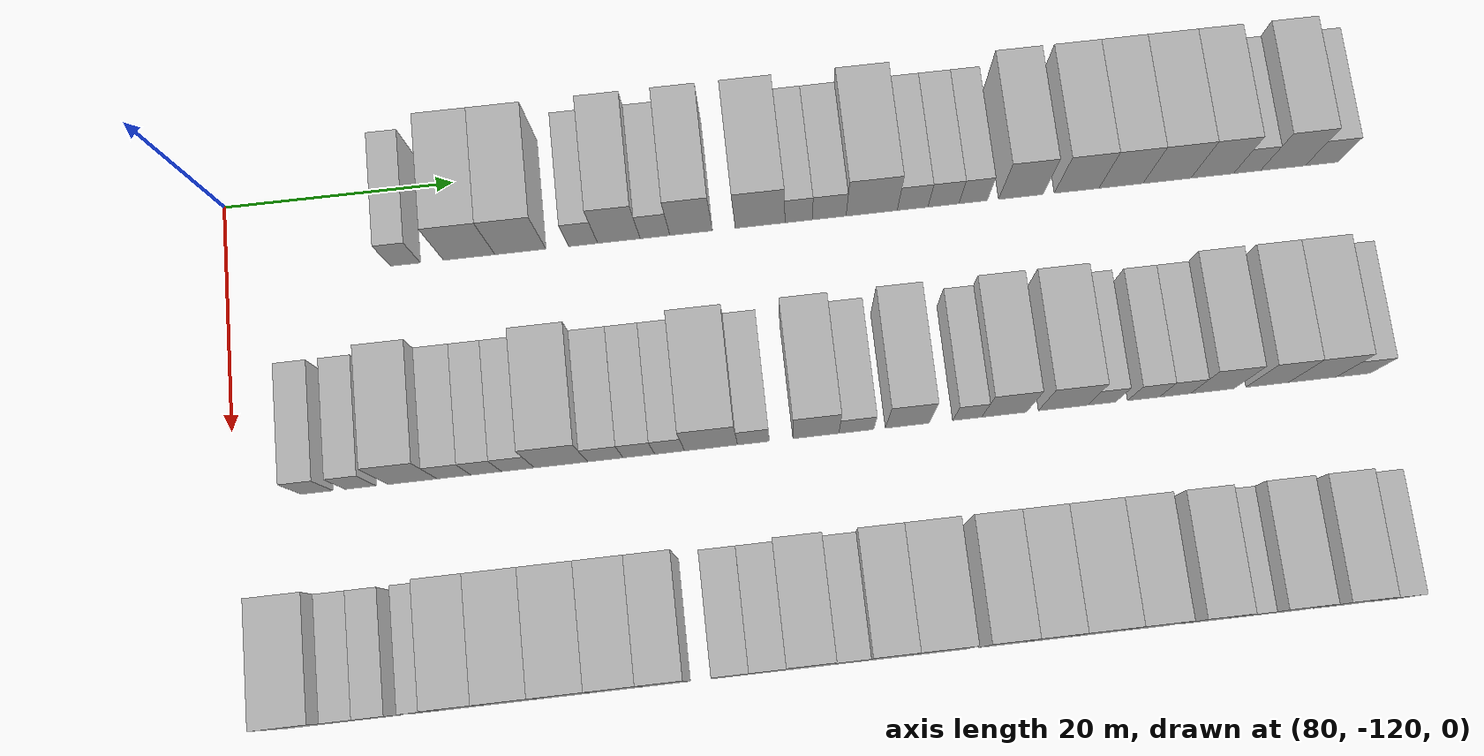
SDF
<sdf version="1.6">
 <world name="default">
  <model name="building_595">
   <static>1</static>
   <pose>82.0000 -104.5225 0 0.000000 0.000000 0.000000</pose>
   <link name="link">
    <pose>0 0 3.00 0 0 0</pose>
    <collision name="collision"><geometry><box><size>10.0000 2.5837 6.0000</size></box></geometry></collision>
    <visual name="visual">
     <cast_shadows>0</cast_shadows>
     <geometry><box><size>10.0000 2.5837 6.0000</size></box></geometry>
     <material>
      <script>
       <uri>model://HANNAS_wall/materials/scripts</uri>
       <uri>model://HANNAS_wall/materials/textures</uri>
       <name>vrc/HANNAS_wall</name>
      </script>
     </material>
    </visual>
   </link>
  </model>
  <model name="building_596">
   <static>1</static>
   <pose>82.0000 -98.9935 0 0.000000 0.000000 0.000000</pose>
   <link name="link">
    <pose>0 0 4.50 0 0 0</pose>
    <collision name="collision"><geometry><box><size>10.0000 4.4743 9.0000</size></box></geometry></collision>
    <visual name="visual">
     <cast_shadows>0</cast_shadows>
     <geometry><box><size>10.0000 4.4743 9.0000</size></box></geometry>
     <material>
      <script>
       <uri>model://HANNAS_wall/materials/scripts</uri>
       <uri>model://HANNAS_wall/materials/textures</uri>
       <name>vrc/HANNAS_wall</name>
      </script>
     </material>
    </visual>
   </link>
  </model>
  <model name="building_597">
   <static>1</static>
   <pose>82.0000 -94.5396 0 0.000000 0.000000 0.000000</pose>
   <link name="link">
    <pose>0 0 4.50 0 0 0</pose>
    <collision name="collision"><geometry><box><size>10.0000 4.4334 9.0000</size></box></geometry></collision>
    <visual name="visual">
     <cast_shadows>0</cast_shadows>
     <geometry><box><size>10.0000 4.4334 9.0000</size></box></geometry>
     <material>
      <script>
       <uri>model://HANNAS_wall/materials/scripts</uri>
       <uri>model://HANNAS_wall/materials/textures</uri>
       <name>vrc/HANNAS_wall</name>
      </script>
     </material>
    </visual>
   </link>
  </model>
  <model name="building_598">
   <static>1</static>
   <pose>82.0000 -89.0688 0 0.000000 0.000000 0.000000</pose>
   <link name="link">
    <pose>0 0 3.00 0 0 0</pose>
    <collision name="collision"><geometry><box><size>10.0000 2.5083 6.0000</size></box></geometry></collision>
    <visual name="visual">
     <cast_shadows>0</cast_shadows>
     <geometry><box><size>10.0000 2.5083 6.0000</size></box></geometry>
     <material>
      <script>
       <uri>model://HANNAS_wall/materials/scripts</uri>
       <uri>model://HANNAS_wall/materials/textures</uri>
       <name>vrc/HANNAS_wall</name>
      </script>
     </material>
    </visual>
   </link>
  </model>
  <model name="building_599">
   <static>1</static>
   <pose>82.0000 -85.9629 0 0.000000 0.000000 0.000000</pose>
   <link name="link">
    <pose>0 0 4.50 0 0 0</pose>
    <collision name="collision"><geometry><box><size>10.0000 3.7035 9.0000</size></box></geometry></collision>
    <visual name="visual">
     <cast_shadows>0</cast_shadows>
     <geometry><box><size>10.0000 3.7035 9.0000</size></box></geometry>
     <material>
      <script>
       <uri>model://HANNAS_wall/materials/scripts</uri>
       <uri>model://HANNAS_wall/materials/textures</uri>
       <name>vrc/HANNAS_wall</name>
      </script>
     </material>
    </visual>
   </link>
  </model>
  <model name="building_600">
   <static>1</static>
   <pose>82.0000 -82.8106 0 0.000000 0.000000 0.000000</pose>
   <link name="link">
    <pose>0 0 3.00 0 0 0</pose>
    <collision name="collision"><geometry><box><size>10.0000 2.6011 6.0000</size></box></geometry></collision>
    <visual name="visual">
     <cast_shadows>0</cast_shadows>
     <geometry><box><size>10.0000 2.6011 6.0000</size></box></geometry>
     <material>
      <script>
       <uri>model://HANNAS_wall/materials/scripts</uri>
       <uri>model://HANNAS_wall/materials/textures</uri>
       <name>vrc/HANNAS_wall</name>
      </script>
     </material>
    </visual>
   </link>
  </model>
  <model name="building_601">
   <static>1</static>
   <pose>82.0000 -79.6483 0 0.000000 0.000000 0.000000</pose>
   <link name="link">
    <pose>0 0 4.50 0 0 0</pose>
    <collision name="collision"><geometry><box><size>10.0000 3.7235 9.0000</size></box></geometry></collision>
    <visual name="visual">
     <cast_shadows>0</cast_shadows>
     <geometry><box><size>10.0000 3.7235 9.0000</size></box></geometry>
     <material>
      <script>
       <uri>model://HANNAS_wall/materials/scripts</uri>
       <uri>model://HANNAS_wall/materials/textures</uri>
       <name>vrc/HANNAS_wall</name>
      </script>
     </material>
    </visual>
   </link>
  </model>
  <model name="building_602">
   <static>1</static>
   <pose>82.0000 -73.6115 0 0.000000 0.000000 0.000000</pose>
   <link name="link">
    <pose>0 0 4.50 0 0 0</pose>
    <collision name="collision"><geometry><box><size>10.0000 4.3500 9.0000</size></box></geometry></collision>
    <visual name="visual">
     <cast_shadows>0</cast_shadows>
     <geometry><box><size>10.0000 4.3500 9.0000</size></box></geometry>
     <material>
      <script>
       <uri>model://HANNAS_wall/materials/scripts</uri>
       <uri>model://HANNAS_wall/materials/textures</uri>
       <name>vrc/HANNAS_wall</name>
      </script>
     </material>
    </visual>
   </link>
  </model>
  <model name="building_603">
   <static>1</static>
   <pose>82.0000 -70.2333 0 0.000000 0.000000 0.000000</pose>
   <link name="link">
    <pose>0 0 3.00 0 0 0</pose>
    <collision name="collision"><geometry><box><size>10.0000 2.4063 6.0000</size></box></geometry></collision>
    <visual name="visual">
     <cast_shadows>0</cast_shadows>
     <geometry><box><size>10.0000 2.4063 6.0000</size></box></geometry>
     <material>
      <script>
       <uri>model://HANNAS_wall/materials/scripts</uri>
       <uri>model://HANNAS_wall/materials/textures</uri>
       <name>vrc/HANNAS_wall</name>
      </script>
     </material>
    </visual>
   </link>
  </model>
  <model name="building_604">
   <static>1</static>
   <pose>82.0000 -67.5488 0 0.000000 0.000000 0.000000</pose>
   <link name="link">
    <pose>0 0 3.00 0 0 0</pose>
    <collision name="collision"><geometry><box><size>10.0000 2.9626 6.0000</size></box></geometry></collision>
    <visual name="visual">
     <cast_shadows>0</cast_shadows>
     <geometry><box><size>10.0000 2.9626 6.0000</size></box></geometry>
     <material>
      <script>
       <uri>model://HANNAS_wall/materials/scripts</uri>
       <uri>model://HANNAS_wall/materials/textures</uri>
       <name>vrc/HANNAS_wall</name>
      </script>
     </material>
    </visual>
   </link>
  </model>
  <model name="building_605">
   <static>1</static>
   <pose>82.0000 -63.8211 0 0.000000 0.000000 0.000000</pose>
   <link name="link">
    <pose>0 0 4.50 0 0 0</pose>
    <collision name="collision"><geometry><box><size>10.0000 4.4929 9.0000</size></box></geometry></collision>
    <visual name="visual">
     <cast_shadows>0</cast_shadows>
     <geometry><box><size>10.0000 4.4929 9.0000</size></box></geometry>
     <material>
      <script>
       <uri>model://HANNAS_wall/materials/scripts</uri>
       <uri>model://HANNAS_wall/materials/textures</uri>
       <name>vrc/HANNAS_wall</name>
      </script>
     </material>
    </visual>
   </link>
  </model>
  <model name="building_606">
   <static>1</static>
   <pose>82.0000 -60.2202 0 0.000000 0.000000 0.000000</pose>
   <link name="link">
    <pose>0 0 3.00 0 0 0</pose>
    <collision name="collision"><geometry><box><size>10.0000 2.7090 6.0000</size></box></geometry></collision>
    <visual name="visual">
     <cast_shadows>0</cast_shadows>
     <geometry><box><size>10.0000 2.7090 6.0000</size></box></geometry>
     <material>
      <script>
       <uri>model://HANNAS_wall/materials/scripts</uri>
       <uri>model://HANNAS_wall/materials/textures</uri>
       <name>vrc/HANNAS_wall</name>
      </script>
     </material>
    </visual>
   </link>
  </model>
  <model name="building_607">
   <static>1</static>
   <pose>82.0000 -57.4985 0 0.000000 0.000000 0.000000</pose>
   <link name="link">
    <pose>0 0 3.00 0 0 0</pose>
    <collision name="collision"><geometry><box><size>10.0000 2.7343 6.0000</size></box></geometry></collision>
    <visual name="visual">
     <cast_shadows>0</cast_shadows>
     <geometry><box><size>10.0000 2.7343 6.0000</size></box></geometry>
     <material>
      <script>
       <uri>model://HANNAS_wall/materials/scripts</uri>
       <uri>model://HANNAS_wall/materials/textures</uri>
       <name>vrc/HANNAS_wall</name>
      </script>
     </material>
    </visual>
   </link>
  </model>
  <model name="building_608">
   <static>1</static>
   <pose>82.0000 -54.8808 0 0.000000 0.000000 0.000000</pose>
   <link name="link">
    <pose>0 0 3.00 0 0 0</pose>
    <collision name="collision"><geometry><box><size>10.0000 2.5011 6.0000</size></box></geometry></collision>
    <visual name="visual">
     <cast_shadows>0</cast_shadows>
     <geometry><box><size>10.0000 2.5011 6.0000</size></box></geometry>
     <material>
      <script>
       <uri>model://HANNAS_wall/materials/scripts</uri>
       <uri>model://HANNAS_wall/materials/textures</uri>
       <name>vrc/HANNAS_wall</name>
      </script>
     </material>
    </visual>
   </link>
  </model>
  <model name="building_609">
   <static>1</static>
   <pose>82.0000 -50.6671 0 0.000000 0.000000 0.000000</pose>
   <link name="link">
    <pose>0 0 4.50 0 0 0</pose>
    <collision name="collision"><geometry><box><size>10.0000 3.9262 9.0000</size></box></geometry></collision>
    <visual name="visual">
     <cast_shadows>0</cast_shadows>
     <geometry><box><size>10.0000 3.9262 9.0000</size></box></geometry>
     <material>
      <script>
       <uri>model://HANNAS_wall/materials/scripts</uri>
       <uri>model://HANNAS_wall/materials/textures</uri>
       <name>vrc/HANNAS_wall</name>
      </script>
     </material>
    </visual>
   </link>
  </model>
  <model name="building_610">
   <static>1</static>
   <pose>82.0000 -45.7217 0 0.000000 0.000000 0.000000</pose>
   <link name="link">
    <pose>0 0 4.50 0 0 0</pose>
    <collision name="collision"><geometry><box><size>10.0000 3.9646 9.0000</size></box></geometry></collision>
    <visual name="visual">
     <cast_shadows>0</cast_shadows>
     <geometry><box><size>10.0000 3.9646 9.0000</size></box></geometry>
     <material>
      <script>
       <uri>model://HANNAS_wall/materials/scripts</uri>
       <uri>model://HANNAS_wall/materials/textures</uri>
       <name>vrc/HANNAS_wall</name>
      </script>
     </material>
    </visual>
   </link>
  </model>
  <model name="building_611">
   <static>1</static>
   <pose>82.0000 -41.7843 0 0.000000 0.000000 0.000000</pose>
   <link name="link">
    <pose>0 0 4.50 0 0 0</pose>
    <collision name="collision"><geometry><box><size>10.0000 3.9101 9.0000</size></box></geometry></collision>
    <visual name="visual">
     <cast_shadows>0</cast_shadows>
     <geometry><box><size>10.0000 3.9101 9.0000</size></box></geometry>
     <material>
      <script>
       <uri>model://HANNAS_wall/materials/scripts</uri>
       <uri>model://HANNAS_wall/materials/textures</uri>
       <name>vrc/HANNAS_wall</name>
      </script>
     </material>
    </visual>
   </link>
  </model>
  <model name="building_612">
   <static>1</static>
   <pose>82.0000 -37.6993 0 0.000000 0.000000 0.000000</pose>
   <link name="link">
    <pose>0 0 4.50 0 0 0</pose>
    <collision name="collision"><geometry><box><size>10.0000 4.2598 9.0000</size></box></geometry></collision>
    <visual name="visual">
     <cast_shadows>0</cast_shadows>
     <geometry><box><size>10.0000 4.2598 9.0000</size></box></geometry>
     <material>
      <script>
       <uri>model://HANNAS_wall/materials/scripts</uri>
       <uri>model://HANNAS_wall/materials/textures</uri>
       <name>vrc/HANNAS_wall</name>
      </script>
     </material>
    </visual>
   </link>
  </model>
  <model name="building_613">
   <static>1</static>
   <pose>82.0000 -33.6711 0 0.000000 0.000000 0.000000</pose>
   <link name="link">
    <pose>0 0 4.50 0 0 0</pose>
    <collision name="collision"><geometry><box><size>10.0000 3.7967 9.0000</size></box></geometry></collision>
    <visual name="visual">
     <cast_shadows>0</cast_shadows>
     <geometry><box><size>10.0000 3.7967 9.0000</size></box></geometry>
     <material>
      <script>
       <uri>model://HANNAS_wall/materials/scripts</uri>
       <uri>model://HANNAS_wall/materials/textures</uri>
       <name>vrc/HANNAS_wall</name>
      </script>
     </material>
    </visual>
   </link>
  </model>
  <model name="building_614">
   <static>1</static>
   <pose>82.0000 -30.5718 0 0.000000 0.000000 0.000000</pose>
   <link name="link">
    <pose>0 0 3.00 0 0 0</pose>
    <collision name="collision"><geometry><box><size>10.0000 2.4019 6.0000</size></box></geometry></collision>
    <visual name="visual">
     <cast_shadows>0</cast_shadows>
     <geometry><box><size>10.0000 2.4019 6.0000</size></box></geometry>
     <material>
      <script>
       <uri>model://HANNAS_wall/materials/scripts</uri>
       <uri>model://HANNAS_wall/materials/textures</uri>
       <name>vrc/HANNAS_wall</name>
      </script>
     </material>
    </visual>
   </link>
  </model>
  <model name="building_615">
   <static>1</static>
   <pose>82.0000 -27.3839 0 0.000000 0.000000 0.000000</pose>
   <link name="link">
    <pose>0 0 4.50 0 0 0</pose>
    <collision name="collision"><geometry><box><size>10.0000 3.9739 9.0000</size></box></geometry></collision>
    <visual name="visual">
     <cast_shadows>0</cast_shadows>
     <geometry><box><size>10.0000 3.9739 9.0000</size></box></geometry>
     <material>
      <script>
       <uri>model://HANNAS_wall/materials/scripts</uri>
       <uri>model://HANNAS_wall/materials/textures</uri>
       <name>vrc/HANNAS_wall</name>
      </script>
     </material>
    </visual>
   </link>
  </model>
  <model name="building_616">
   <static>1</static>
   <pose>82.0000 -23.9412 0 0.000000 0.000000 0.000000</pose>
   <link name="link">
    <pose>0 0 3.00 0 0 0</pose>
    <collision name="collision"><geometry><box><size>10.0000 2.9114 6.0000</size></box></geometry></collision>
    <visual name="visual">
     <cast_shadows>0</cast_shadows>
     <geometry><box><size>10.0000 2.9114 6.0000</size></box></geometry>
     <material>
      <script>
       <uri>model://HANNAS_wall/materials/scripts</uri>
       <uri>model://HANNAS_wall/materials/textures</uri>
       <name>vrc/HANNAS_wall</name>
      </script>
     </material>
    </visual>
   </link>
  </model>
  <model name="building_766">
   <static>1</static>
   <pose>101.0000 -113.0785 0 0.000000 0.000000 0.000000</pose>
   <link name="link">
    <pose>0 0 3.00 0 0 0</pose>
    <collision name="collision"><geometry><box><size>10.0000 2.6902 6.0000</size></box></geometry></collision>
    <visual name="visual">
     <cast_shadows>0</cast_shadows>
     <geometry><box><size>10.0000 2.6902 6.0000</size></box></geometry>
     <material>
      <script>
       <uri>model://HANNAS_wall/materials/scripts</uri>
       <uri>model://HANNAS_wall/materials/textures</uri>
       <name>vrc/HANNAS_wall</name>
      </script>
     </material>
    </visual>
   </link>
  </model>
  <model name="building_767">
   <static>1</static>
   <pose>101.0000 -109.4268 0 0.000000 0.000000 0.000000</pose>
   <link name="link">
    <pose>0 0 3.00 0 0 0</pose>
    <collision name="collision"><geometry><box><size>10.0000 2.6131 6.0000</size></box></geometry></collision>
    <visual name="visual">
     <cast_shadows>0</cast_shadows>
     <geometry><box><size>10.0000 2.6131 6.0000</size></box></geometry>
     <material>
      <script>
       <uri>model://HANNAS_wall/materials/scripts</uri>
       <uri>model://HANNAS_wall/materials/textures</uri>
       <name>vrc/HANNAS_wall</name>
      </script>
     </material>
    </visual>
   </link>
  </model>
  <model name="building_768">
   <static>1</static>
   <pose>101.0000 -105.0591 0 0.000000 0.000000 0.000000</pose>
   <link name="link">
    <pose>0 0 4.50 0 0 0</pose>
    <collision name="collision"><geometry><box><size>10.0000 4.1223 9.0000</size></box></geometry></collision>
    <visual name="visual">
     <cast_shadows>0</cast_shadows>
     <geometry><box><size>10.0000 4.1223 9.0000</size></box></geometry>
     <material>
      <script>
       <uri>model://HANNAS_wall/materials/scripts</uri>
       <uri>model://HANNAS_wall/materials/textures</uri>
       <name>vrc/HANNAS_wall</name>
      </script>
     </material>
    </visual>
   </link>
  </model>
  <model name="building_769">
   <static>1</static>
   <pose>101.0000 -101.5659 0 0.000000 0.000000 0.000000</pose>
   <link name="link">
    <pose>0 0 3.00 0 0 0</pose>
    <collision name="collision"><geometry><box><size>10.0000 2.8641 6.0000</size></box></geometry></collision>
    <visual name="visual">
     <cast_shadows>0</cast_shadows>
     <geometry><box><size>10.0000 2.8641 6.0000</size></box></geometry>
     <material>
      <script>
       <uri>model://HANNAS_wall/materials/scripts</uri>
       <uri>model://HANNAS_wall/materials/textures</uri>
       <name>vrc/HANNAS_wall</name>
      </script>
     </material>
    </visual>
   </link>
  </model>
  <model name="building_770">
   <static>1</static>
   <pose>101.0000 -98.8499 0 0.000000 0.000000 0.000000</pose>
   <link name="link">
    <pose>0 0 3.00 0 0 0</pose>
    <collision name="collision"><geometry><box><size>10.0000 2.5679 6.0000</size></box></geometry></collision>
    <visual name="visual">
     <cast_shadows>0</cast_shadows>
     <geometry><box><size>10.0000 2.5679 6.0000</size></box></geometry>
     <material>
      <script>
       <uri>model://HANNAS_wall/materials/scripts</uri>
       <uri>model://HANNAS_wall/materials/textures</uri>
       <name>vrc/HANNAS_wall</name>
      </script>
     </material>
    </visual>
   </link>
  </model>
  <model name="building_771">
   <static>1</static>
   <pose>101.0000 -96.1798 0 0.000000 0.000000 0.000000</pose>
   <link name="link">
    <pose>0 0 3.00 0 0 0</pose>
    <collision name="collision"><geometry><box><size>10.0000 2.7722 6.0000</size></box></geometry></collision>
    <visual name="visual">
     <cast_shadows>0</cast_shadows>
     <geometry><box><size>10.0000 2.7722 6.0000</size></box></geometry>
     <material>
      <script>
       <uri>model://HANNAS_wall/materials/scripts</uri>
       <uri>model://HANNAS_wall/materials/textures</uri>
       <name>vrc/HANNAS_wall</name>
      </script>
     </material>
    </visual>
   </link>
  </model>
  <model name="building_772">
   <static>1</static>
   <pose>101.0000 -92.5441 0 0.000000 0.000000 0.000000</pose>
   <link name="link">
    <pose>0 0 4.50 0 0 0</pose>
    <collision name="collision"><geometry><box><size>10.0000 4.4993 9.0000</size></box></geometry></collision>
    <visual name="visual">
     <cast_shadows>0</cast_shadows>
     <geometry><box><size>10.0000 4.4993 9.0000</size></box></geometry>
     <material>
      <script>
       <uri>model://HANNAS_wall/materials/scripts</uri>
       <uri>model://HANNAS_wall/materials/textures</uri>
       <name>vrc/HANNAS_wall</name>
      </script>
     </material>
    </visual>
   </link>
  </model>
  <model name="building_773">
   <static>1</static>
   <pose>101.0000 -88.8003 0 0.000000 0.000000 0.000000</pose>
   <link name="link">
    <pose>0 0 3.00 0 0 0</pose>
    <collision name="collision"><geometry><box><size>10.0000 2.9882 6.0000</size></box></geometry></collision>
    <visual name="visual">
     <cast_shadows>0</cast_shadows>
     <geometry><box><size>10.0000 2.9882 6.0000</size></box></geometry>
     <material>
      <script>
       <uri>model://HANNAS_wall/materials/scripts</uri>
       <uri>model://HANNAS_wall/materials/textures</uri>
       <name>vrc/HANNAS_wall</name>
      </script>
     </material>
    </visual>
   </link>
  </model>
  <model name="building_774">
   <static>1</static>
   <pose>101.0000 -85.9642 0 0.000000 0.000000 0.000000</pose>
   <link name="link">
    <pose>0 0 3.00 0 0 0</pose>
    <collision name="collision"><geometry><box><size>10.0000 2.6839 6.0000</size></box></geometry></collision>
    <visual name="visual">
     <cast_shadows>0</cast_shadows>
     <geometry><box><size>10.0000 2.6839 6.0000</size></box></geometry>
     <material>
      <script>
       <uri>model://HANNAS_wall/materials/scripts</uri>
       <uri>model://HANNAS_wall/materials/textures</uri>
       <name>vrc/HANNAS_wall</name>
      </script>
     </material>
    </visual>
   </link>
  </model>
  <model name="building_775">
   <static>1</static>
   <pose>101.0000 -83.3638 0 0.000000 0.000000 0.000000</pose>
   <link name="link">
    <pose>0 0 3.00 0 0 0</pose>
    <collision name="collision"><geometry><box><size>10.0000 2.5169 6.0000</size></box></geometry></collision>
    <visual name="visual">
     <cast_shadows>0</cast_shadows>
     <geometry><box><size>10.0000 2.5169 6.0000</size></box></geometry>
     <material>
      <script>
       <uri>model://HANNAS_wall/materials/scripts</uri>
       <uri>model://HANNAS_wall/materials/textures</uri>
       <name>vrc/HANNAS_wall</name>
      </script>
     </material>
    </visual>
   </link>
  </model>
  <model name="building_776">
   <static>1</static>
   <pose>101.0000 -79.8582 0 0.000000 0.000000 0.000000</pose>
   <link name="link">
    <pose>0 0 4.50 0 0 0</pose>
    <collision name="collision"><geometry><box><size>10.0000 4.4943 9.0000</size></box></geometry></collision>
    <visual name="visual">
     <cast_shadows>0</cast_shadows>
     <geometry><box><size>10.0000 4.4943 9.0000</size></box></geometry>
     <material>
      <script>
       <uri>model://HANNAS_wall/materials/scripts</uri>
       <uri>model://HANNAS_wall/materials/textures</uri>
       <name>vrc/HANNAS_wall</name>
      </script>
     </material>
    </visual>
   </link>
  </model>
  <model name="building_777">
   <static>1</static>
   <pose>101.0000 -76.2611 0 0.000000 0.000000 0.000000</pose>
   <link name="link">
    <pose>0 0 3.00 0 0 0</pose>
    <collision name="collision"><geometry><box><size>10.0000 2.7000 6.0000</size></box></geometry></collision>
    <visual name="visual">
     <cast_shadows>0</cast_shadows>
     <geometry><box><size>10.0000 2.7000 6.0000</size></box></geometry>
     <material>
      <script>
       <uri>model://HANNAS_wall/materials/scripts</uri>
       <uri>model://HANNAS_wall/materials/textures</uri>
       <name>vrc/HANNAS_wall</name>
      </script>
     </material>
    </visual>
   </link>
  </model>
  <model name="building_778">
   <static>1</static>
   <pose>101.0000 -70.9595 0 0.000000 0.000000 0.000000</pose>
   <link name="link">
    <pose>0 0 4.50 0 0 0</pose>
    <collision name="collision"><geometry><box><size>10.0000 3.9032 9.0000</size></box></geometry></collision>
    <visual name="visual">
     <cast_shadows>0</cast_shadows>
     <geometry><box><size>10.0000 3.9032 9.0000</size></box></geometry>
     <material>
      <script>
       <uri>model://HANNAS_wall/materials/scripts</uri>
       <uri>model://HANNAS_wall/materials/textures</uri>
       <name>vrc/HANNAS_wall</name>
      </script>
     </material>
    </visual>
   </link>
  </model>
  <model name="building_779">
   <static>1</static>
   <pose>101.0000 -67.5212 0 0.000000 0.000000 0.000000</pose>
   <link name="link">
    <pose>0 0 3.00 0 0 0</pose>
    <collision name="collision"><geometry><box><size>10.0000 2.9732 6.0000</size></box></geometry></collision>
    <visual name="visual">
     <cast_shadows>0</cast_shadows>
     <geometry><box><size>10.0000 2.9732 6.0000</size></box></geometry>
     <material>
      <script>
       <uri>model://HANNAS_wall/materials/scripts</uri>
       <uri>model://HANNAS_wall/materials/textures</uri>
       <name>vrc/HANNAS_wall</name>
      </script>
     </material>
    </visual>
   </link>
  </model>
  <model name="building_780">
   <static>1</static>
   <pose>101.0000 -63.1603 0 0.000000 0.000000 0.000000</pose>
   <link name="link">
    <pose>0 0 4.50 0 0 0</pose>
    <collision name="collision"><geometry><box><size>10.0000 3.7486 9.0000</size></box></geometry></collision>
    <visual name="visual">
     <cast_shadows>0</cast_shadows>
     <geometry><box><size>10.0000 3.7486 9.0000</size></box></geometry>
     <material>
      <script>
       <uri>model://HANNAS_wall/materials/scripts</uri>
       <uri>model://HANNAS_wall/materials/textures</uri>
       <name>vrc/HANNAS_wall</name>
      </script>
     </material>
    </visual>
   </link>
  </model>
  <model name="building_781">
   <static>1</static>
   <pose>101.0000 -58.0423 0 0.000000 0.000000 0.000000</pose>
   <link name="link">
    <pose>0 0 3.00 0 0 0</pose>
    <collision name="collision"><geometry><box><size>10.0000 2.4872 6.0000</size></box></geometry></collision>
    <visual name="visual">
     <cast_shadows>0</cast_shadows>
     <geometry><box><size>10.0000 2.4872 6.0000</size></box></geometry>
     <material>
      <script>
       <uri>model://HANNAS_wall/materials/scripts</uri>
       <uri>model://HANNAS_wall/materials/textures</uri>
       <name>vrc/HANNAS_wall</name>
      </script>
     </material>
    </visual>
   </link>
  </model>
  <model name="building_782">
   <static>1</static>
   <pose>101.0000 -54.8683 0 0.000000 0.000000 0.000000</pose>
   <link name="link">
    <pose>0 0 4.50 0 0 0</pose>
    <collision name="collision"><geometry><box><size>10.0000 3.8608 9.0000</size></box></geometry></collision>
    <visual name="visual">
     <cast_shadows>0</cast_shadows>
     <geometry><box><size>10.0000 3.8608 9.0000</size></box></geometry>
     <material>
      <script>
       <uri>model://HANNAS_wall/materials/scripts</uri>
       <uri>model://HANNAS_wall/materials/textures</uri>
       <name>vrc/HANNAS_wall</name>
      </script>
     </material>
    </visual>
   </link>
  </model>
  <model name="building_783">
   <static>1</static>
   <pose>101.0000 -49.8170 0 0.000000 0.000000 0.000000</pose>
   <link name="link">
    <pose>0 0 4.50 0 0 0</pose>
    <collision name="collision"><geometry><box><size>10.0000 4.2418 9.0000</size></box></geometry></collision>
    <visual name="visual">
     <cast_shadows>0</cast_shadows>
     <geometry><box><size>10.0000 4.2418 9.0000</size></box></geometry>
     <material>
      <script>
       <uri>model://HANNAS_wall/materials/scripts</uri>
       <uri>model://HANNAS_wall/materials/textures</uri>
       <name>vrc/HANNAS_wall</name>
      </script>
     </material>
    </visual>
   </link>
  </model>
  <model name="building_784">
   <static>1</static>
   <pose>101.0000 -46.4875 0 0.000000 0.000000 0.000000</pose>
   <link name="link">
    <pose>0 0 3.00 0 0 0</pose>
    <collision name="collision"><geometry><box><size>10.0000 2.4173 6.0000</size></box></geometry></collision>
    <visual name="visual">
     <cast_shadows>0</cast_shadows>
     <geometry><box><size>10.0000 2.4173 6.0000</size></box></geometry>
     <material>
      <script>
       <uri>model://HANNAS_wall/materials/scripts</uri>
       <uri>model://HANNAS_wall/materials/textures</uri>
       <name>vrc/HANNAS_wall</name>
      </script>
     </material>
    </visual>
   </link>
  </model>
  <model name="building_785">
   <static>1</static>
   <pose>101.0000 -42.9076 0 0.000000 0.000000 0.000000</pose>
   <link name="link">
    <pose>0 0 3.00 0 0 0</pose>
    <collision name="collision"><geometry><box><size>10.0000 2.7424 6.0000</size></box></geometry></collision>
    <visual name="visual">
     <cast_shadows>0</cast_shadows>
     <geometry><box><size>10.0000 2.7424 6.0000</size></box></geometry>
     <material>
      <script>
       <uri>model://HANNAS_wall/materials/scripts</uri>
       <uri>model://HANNAS_wall/materials/textures</uri>
       <name>vrc/HANNAS_wall</name>
      </script>
     </material>
    </visual>
   </link>
  </model>
  <model name="building_786">
   <static>1</static>
   <pose>101.0000 -40.1920 0 0.000000 0.000000 0.000000</pose>
   <link name="link">
    <pose>0 0 3.00 0 0 0</pose>
    <collision name="collision"><geometry><box><size>10.0000 2.6887 6.0000</size></box></geometry></collision>
    <visual name="visual">
     <cast_shadows>0</cast_shadows>
     <geometry><box><size>10.0000 2.6887 6.0000</size></box></geometry>
     <material>
      <script>
       <uri>model://HANNAS_wall/materials/scripts</uri>
       <uri>model://HANNAS_wall/materials/textures</uri>
       <name>vrc/HANNAS_wall</name>
      </script>
     </material>
    </visual>
   </link>
  </model>
  <model name="building_787">
   <static>1</static>
   <pose>101.0000 -36.9621 0 0.000000 0.000000 0.000000</pose>
   <link name="link">
    <pose>0 0 4.50 0 0 0</pose>
    <collision name="collision"><geometry><box><size>10.0000 3.7711 9.0000</size></box></geometry></collision>
    <visual name="visual">
     <cast_shadows>0</cast_shadows>
     <geometry><box><size>10.0000 3.7711 9.0000</size></box></geometry>
     <material>
      <script>
       <uri>model://HANNAS_wall/materials/scripts</uri>
       <uri>model://HANNAS_wall/materials/textures</uri>
       <name>vrc/HANNAS_wall</name>
      </script>
     </material>
    </visual>
   </link>
  </model>
  <model name="building_788">
   <static>1</static>
   <pose>101.0000 -32.2370 0 0.000000 0.000000 0.000000</pose>
   <link name="link">
    <pose>0 0 4.50 0 0 0</pose>
    <collision name="collision"><geometry><box><size>10.0000 3.6791 9.0000</size></box></geometry></collision>
    <visual name="visual">
     <cast_shadows>0</cast_shadows>
     <geometry><box><size>10.0000 3.6791 9.0000</size></box></geometry>
     <material>
      <script>
       <uri>model://HANNAS_wall/materials/scripts</uri>
       <uri>model://HANNAS_wall/materials/textures</uri>
       <name>vrc/HANNAS_wall</name>
      </script>
     </material>
    </visual>
   </link>
  </model>
  <model name="building_789">
   <static>1</static>
   <pose>101.0000 -28.3250 0 0.000000 0.000000 0.000000</pose>
   <link name="link">
    <pose>0 0 4.50 0 0 0</pose>
    <collision name="collision"><geometry><box><size>10.0000 4.1450 9.0000</size></box></geometry></collision>
    <visual name="visual">
     <cast_shadows>0</cast_shadows>
     <geometry><box><size>10.0000 4.1450 9.0000</size></box></geometry>
     <material>
      <script>
       <uri>model://HANNAS_wall/materials/scripts</uri>
       <uri>model://HANNAS_wall/materials/textures</uri>
       <name>vrc/HANNAS_wall</name>
      </script>
     </material>
    </visual>
   </link>
  </model>
  <model name="building_790">
   <static>1</static>
   <pose>101.0000 -24.7771 0 0.000000 0.000000 0.000000</pose>
   <link name="link">
    <pose>0 0 3.00 0 0 0</pose>
    <collision name="collision"><geometry><box><size>10.0000 2.9508 6.0000</size></box></geometry></collision>
    <visual name="visual">
     <cast_shadows>0</cast_shadows>
     <geometry><box><size>10.0000 2.9508 6.0000</size></box></geometry>
     <material>
      <script>
       <uri>model://HANNAS_wall/materials/scripts</uri>
       <uri>model://HANNAS_wall/materials/textures</uri>
       <name>vrc/HANNAS_wall</name>
      </script>
     </material>
    </visual>
   </link>
  </model>
  <model name="building_944">
   <static>1</static>
   <pose>120.0000 -114.2811 0 0.000000 0.000000 0.000000</pose>
   <link name="link">
    <pose>0 0 4.50 0 0 0</pose>
    <collision name="collision"><geometry><box><size>10.0000 4.4688 9.0000</size></box></geometry></collision>
    <visual name="visual">
     <cast_shadows>0</cast_shadows>
     <geometry><box><size>10.0000 4.4688 9.0000</size></box></geometry>
     <material>
      <script>
       <uri>model://HANNAS_wall/materials/scripts</uri>
       <uri>model://HANNAS_wall/materials/textures</uri>
       <name>vrc/HANNAS_wall</name>
      </script>
     </material>
    </visual>
   </link>
  </model>
  <model name="building_945">
   <static>1</static>
   <pose>120.0000 -110.7978 0 0.000000 0.000000 0.000000</pose>
   <link name="link">
    <pose>0 0 3.00 0 0 0</pose>
    <collision name="collision"><geometry><box><size>10.0000 2.4978 6.0000</size></box></geometry></collision>
    <visual name="visual">
     <cast_shadows>0</cast_shadows>
     <geometry><box><size>10.0000 2.4978 6.0000</size></box></geometry>
     <material>
      <script>
       <uri>model://HANNAS_wall/materials/scripts</uri>
       <uri>model://HANNAS_wall/materials/textures</uri>
       <name>vrc/HANNAS_wall</name>
      </script>
     </material>
    </visual>
   </link>
  </model>
  <model name="building_946">
   <static>1</static>
   <pose>120.0000 -108.2887 0 0.000000 0.000000 0.000000</pose>
   <link name="link">
    <pose>0 0 3.00 0 0 0</pose>
    <collision name="collision"><geometry><box><size>10.0000 2.5204 6.0000</size></box></geometry></collision>
    <visual name="visual">
     <cast_shadows>0</cast_shadows>
     <geometry><box><size>10.0000 2.5204 6.0000</size></box></geometry>
     <material>
      <script>
       <uri>model://HANNAS_wall/materials/scripts</uri>
       <uri>model://HANNAS_wall/materials/textures</uri>
       <name>vrc/HANNAS_wall</name>
      </script>
     </material>
    </visual>
   </link>
  </model>
  <model name="building_947">
   <static>1</static>
   <pose>120.0000 -104.8253 0 0.000000 0.000000 0.000000</pose>
   <link name="link">
    <pose>0 0 3.00 0 0 0</pose>
    <collision name="collision"><geometry><box><size>10.0000 2.4063 6.0000</size></box></geometry></collision>
    <visual name="visual">
     <cast_shadows>0</cast_shadows>
     <geometry><box><size>10.0000 2.4063 6.0000</size></box></geometry>
     <material>
      <script>
       <uri>model://HANNAS_wall/materials/scripts</uri>
       <uri>model://HANNAS_wall/materials/textures</uri>
       <name>vrc/HANNAS_wall</name>
      </script>
     </material>
    </visual>
   </link>
  </model>
  <model name="building_948">
   <static>1</static>
   <pose>120.0000 -101.6571 0 0.000000 0.000000 0.000000</pose>
   <link name="link">
    <pose>0 0 4.50 0 0 0</pose>
    <collision name="collision"><geometry><box><size>10.0000 3.9302 9.0000</size></box></geometry></collision>
    <visual name="visual">
     <cast_shadows>0</cast_shadows>
     <geometry><box><size>10.0000 3.9302 9.0000</size></box></geometry>
     <material>
      <script>
       <uri>model://HANNAS_wall/materials/scripts</uri>
       <uri>model://HANNAS_wall/materials/textures</uri>
       <name>vrc/HANNAS_wall</name>
      </script>
     </material>
    </visual>
   </link>
  </model>
  <model name="building_949">
   <static>1</static>
   <pose>120.0000 -97.5652 0 0.000000 0.000000 0.000000</pose>
   <link name="link">
    <pose>0 0 4.50 0 0 0</pose>
    <collision name="collision"><geometry><box><size>10.0000 4.2536 9.0000</size></box></geometry></collision>
    <visual name="visual">
     <cast_shadows>0</cast_shadows>
     <geometry><box><size>10.0000 4.2536 9.0000</size></box></geometry>
     <material>
      <script>
       <uri>model://HANNAS_wall/materials/scripts</uri>
       <uri>model://HANNAS_wall/materials/textures</uri>
       <name>vrc/HANNAS_wall</name>
      </script>
     </material>
    </visual>
   </link>
  </model>
  <model name="building_950">
   <static>1</static>
   <pose>120.0000 -93.2817 0 0.000000 0.000000 0.000000</pose>
   <link name="link">
    <pose>0 0 4.50 0 0 0</pose>
    <collision name="collision"><geometry><box><size>10.0000 4.3133 9.0000</size></box></geometry></collision>
    <visual name="visual">
     <cast_shadows>0</cast_shadows>
     <geometry><box><size>10.0000 4.3133 9.0000</size></box></geometry>
     <material>
      <script>
       <uri>model://HANNAS_wall/materials/scripts</uri>
       <uri>model://HANNAS_wall/materials/textures</uri>
       <name>vrc/HANNAS_wall</name>
      </script>
     </material>
    </visual>
   </link>
  </model>
  <model name="building_951">
   <static>1</static>
   <pose>120.0000 -89.1593 0 0.000000 0.000000 0.000000</pose>
   <link name="link">
    <pose>0 0 4.50 0 0 0</pose>
    <collision name="collision"><geometry><box><size>10.0000 3.9315 9.0000</size></box></geometry></collision>
    <visual name="visual">
     <cast_shadows>0</cast_shadows>
     <geometry><box><size>10.0000 3.9315 9.0000</size></box></geometry>
     <material>
      <script>
       <uri>model://HANNAS_wall/materials/scripts</uri>
       <uri>model://HANNAS_wall/materials/textures</uri>
       <name>vrc/HANNAS_wall</name>
      </script>
     </material>
    </visual>
   </link>
  </model>
  <model name="building_952">
   <static>1</static>
   <pose>120.0000 -85.3543 0 0.000000 0.000000 0.000000</pose>
   <link name="link">
    <pose>0 0 4.50 0 0 0</pose>
    <collision name="collision"><geometry><box><size>10.0000 3.6785 9.0000</size></box></geometry></collision>
    <visual name="visual">
     <cast_shadows>0</cast_shadows>
     <geometry><box><size>10.0000 3.6785 9.0000</size></box></geometry>
     <material>
      <script>
       <uri>model://HANNAS_wall/materials/scripts</uri>
       <uri>model://HANNAS_wall/materials/textures</uri>
       <name>vrc/HANNAS_wall</name>
      </script>
     </material>
    </visual>
   </link>
  </model>
  <model name="building_953">
   <static>1</static>
   <pose>120.0000 -80.0343 0 0.000000 0.000000 0.000000</pose>
   <link name="link">
    <pose>0 0 3.00 0 0 0</pose>
    <collision name="collision"><geometry><box><size>10.0000 2.9615 6.0000</size></box></geometry></collision>
    <visual name="visual">
     <cast_shadows>0</cast_shadows>
     <geometry><box><size>10.0000 2.9615 6.0000</size></box></geometry>
     <material>
      <script>
       <uri>model://HANNAS_wall/materials/scripts</uri>
       <uri>model://HANNAS_wall/materials/textures</uri>
       <name>vrc/HANNAS_wall</name>
      </script>
     </material>
    </visual>
   </link>
  </model>
  <model name="building_954">
   <static>1</static>
   <pose>120.0000 -77.0662 0 0.000000 0.000000 0.000000</pose>
   <link name="link">
    <pose>0 0 3.00 0 0 0</pose>
    <collision name="collision"><geometry><box><size>10.0000 2.9745 6.0000</size></box></geometry></collision>
    <visual name="visual">
     <cast_shadows>0</cast_shadows>
     <geometry><box><size>10.0000 2.9745 6.0000</size></box></geometry>
     <material>
      <script>
       <uri>model://HANNAS_wall/materials/scripts</uri>
       <uri>model://HANNAS_wall/materials/textures</uri>
       <name>vrc/HANNAS_wall</name>
      </script>
     </material>
    </visual>
   </link>
  </model>
  <model name="building_955">
   <static>1</static>
   <pose>120.0000 -73.6308 0 0.000000 0.000000 0.000000</pose>
   <link name="link">
    <pose>0 0 4.50 0 0 0</pose>
    <collision name="collision"><geometry><box><size>10.0000 3.8962 9.0000</size></box></geometry></collision>
    <visual name="visual">
     <cast_shadows>0</cast_shadows>
     <geometry><box><size>10.0000 3.8962 9.0000</size></box></geometry>
     <material>
      <script>
       <uri>model://HANNAS_wall/materials/scripts</uri>
       <uri>model://HANNAS_wall/materials/textures</uri>
       <name>vrc/HANNAS_wall</name>
      </script>
     </material>
    </visual>
   </link>
  </model>
  <model name="building_956">
   <static>1</static>
   <pose>120.0000 -70.2857 0 0.000000 0.000000 0.000000</pose>
   <link name="link">
    <pose>0 0 3.00 0 0 0</pose>
    <collision name="collision"><geometry><box><size>10.0000 2.7940 6.0000</size></box></geometry></collision>
    <visual name="visual">
     <cast_shadows>0</cast_shadows>
     <geometry><box><size>10.0000 2.7940 6.0000</size></box></geometry>
     <material>
      <script>
       <uri>model://HANNAS_wall/materials/scripts</uri>
       <uri>model://HANNAS_wall/materials/textures</uri>
       <name>vrc/HANNAS_wall</name>
      </script>
     </material>
    </visual>
   </link>
  </model>
  <model name="building_957">
   <static>1</static>
   <pose>120.0000 -67.0484 0 0.000000 0.000000 0.000000</pose>
   <link name="link">
    <pose>0 0 4.50 0 0 0</pose>
    <collision name="collision"><geometry><box><size>10.0000 3.6806 9.0000</size></box></geometry></collision>
    <visual name="visual">
     <cast_shadows>0</cast_shadows>
     <geometry><box><size>10.0000 3.6806 9.0000</size></box></geometry>
     <material>
      <script>
       <uri>model://HANNAS_wall/materials/scripts</uri>
       <uri>model://HANNAS_wall/materials/textures</uri>
       <name>vrc/HANNAS_wall</name>
      </script>
     </material>
    </visual>
   </link>
  </model>
  <model name="building_958">
   <static>1</static>
   <pose>120.0000 -62.9679 0 0.000000 0.000000 0.000000</pose>
   <link name="link">
    <pose>0 0 4.50 0 0 0</pose>
    <collision name="collision"><geometry><box><size>10.0000 4.4806 9.0000</size></box></geometry></collision>
    <visual name="visual">
     <cast_shadows>0</cast_shadows>
     <geometry><box><size>10.0000 4.4806 9.0000</size></box></geometry>
     <material>
      <script>
       <uri>model://HANNAS_wall/materials/scripts</uri>
       <uri>model://HANNAS_wall/materials/textures</uri>
       <name>vrc/HANNAS_wall</name>
      </script>
     </material>
    </visual>
   </link>
  </model>
  <model name="building_959">
   <static>1</static>
   <pose>120.0000 -57.8426 0 0.000000 0.000000 0.000000</pose>
   <link name="link">
    <pose>0 0 4.50 0 0 0</pose>
    <collision name="collision"><geometry><box><size>10.0000 3.7700 9.0000</size></box></geometry></collision>
    <visual name="visual">
     <cast_shadows>0</cast_shadows>
     <geometry><box><size>10.0000 3.7700 9.0000</size></box></geometry>
     <material>
      <script>
       <uri>model://HANNAS_wall/materials/scripts</uri>
       <uri>model://HANNAS_wall/materials/textures</uri>
       <name>vrc/HANNAS_wall</name>
      </script>
     </material>
    </visual>
   </link>
  </model>
  <model name="building_960">
   <static>1</static>
   <pose>120.0000 -54.1160 0 0.000000 0.000000 0.000000</pose>
   <link name="link">
    <pose>0 0 4.50 0 0 0</pose>
    <collision name="collision"><geometry><box><size>10.0000 3.6833 9.0000</size></box></geometry></collision>
    <visual name="visual">
     <cast_shadows>0</cast_shadows>
     <geometry><box><size>10.0000 3.6833 9.0000</size></box></geometry>
     <material>
      <script>
       <uri>model://HANNAS_wall/materials/scripts</uri>
       <uri>model://HANNAS_wall/materials/textures</uri>
       <name>vrc/HANNAS_wall</name>
      </script>
     </material>
    </visual>
   </link>
  </model>
  <model name="building_961">
   <static>1</static>
   <pose>120.0000 -50.0889 0 0.000000 0.000000 0.000000</pose>
   <link name="link">
    <pose>0 0 4.50 0 0 0</pose>
    <collision name="collision"><geometry><box><size>10.0000 4.3708 9.0000</size></box></geometry></collision>
    <visual name="visual">
     <cast_shadows>0</cast_shadows>
     <geometry><box><size>10.0000 4.3708 9.0000</size></box></geometry>
     <material>
      <script>
       <uri>model://HANNAS_wall/materials/scripts</uri>
       <uri>model://HANNAS_wall/materials/textures</uri>
       <name>vrc/HANNAS_wall</name>
      </script>
     </material>
    </visual>
   </link>
  </model>
  <model name="building_962">
   <static>1</static>
   <pose>120.0000 -45.9815 0 0.000000 0.000000 0.000000</pose>
   <link name="link">
    <pose>0 0 4.50 0 0 0</pose>
    <collision name="collision"><geometry><box><size>10.0000 3.8440 9.0000</size></box></geometry></collision>
    <visual name="visual">
     <cast_shadows>0</cast_shadows>
     <geometry><box><size>10.0000 3.8440 9.0000</size></box></geometry>
     <material>
      <script>
       <uri>model://HANNAS_wall/materials/scripts</uri>
       <uri>model://HANNAS_wall/materials/textures</uri>
       <name>vrc/HANNAS_wall</name>
      </script>
     </material>
    </visual>
   </link>
  </model>
  <model name="building_963">
   <static>1</static>
   <pose>120.0000 -41.1643 0 0.000000 0.000000 0.000000</pose>
   <link name="link">
    <pose>0 0 4.50 0 0 0</pose>
    <collision name="collision"><geometry><box><size>10.0000 3.7904 9.0000</size></box></geometry></collision>
    <visual name="visual">
     <cast_shadows>0</cast_shadows>
     <geometry><box><size>10.0000 3.7904 9.0000</size></box></geometry>
     <material>
      <script>
       <uri>model://HANNAS_wall/materials/scripts</uri>
       <uri>model://HANNAS_wall/materials/textures</uri>
       <name>vrc/HANNAS_wall</name>
      </script>
     </material>
    </visual>
   </link>
  </model>
  <model name="building_964">
   <static>1</static>
   <pose>120.0000 -37.9992 0 0.000000 0.000000 0.000000</pose>
   <link name="link">
    <pose>0 0 3.00 0 0 0</pose>
    <collision name="collision"><geometry><box><size>10.0000 2.5398 6.0000</size></box></geometry></collision>
    <visual name="visual">
     <cast_shadows>0</cast_shadows>
     <geometry><box><size>10.0000 2.5398 6.0000</size></box></geometry>
     <material>
      <script>
       <uri>model://HANNAS_wall/materials/scripts</uri>
       <uri>model://HANNAS_wall/materials/textures</uri>
       <name>vrc/HANNAS_wall</name>
      </script>
     </material>
    </visual>
   </link>
  </model>
  <model name="building_965">
   <static>1</static>
   <pose>120.0000 -34.7752 0 0.000000 0.000000 0.000000</pose>
   <link name="link">
    <pose>0 0 4.50 0 0 0</pose>
    <collision name="collision"><geometry><box><size>10.0000 3.9080 9.0000</size></box></geometry></collision>
    <visual name="visual">
     <cast_shadows>0</cast_shadows>
     <geometry><box><size>10.0000 3.9080 9.0000</size></box></geometry>
     <material>
      <script>
       <uri>model://HANNAS_wall/materials/scripts</uri>
       <uri>model://HANNAS_wall/materials/textures</uri>
       <name>vrc/HANNAS_wall</name>
      </script>
     </material>
    </visual>
   </link>
  </model>
  <model name="building_966">
   <static>1</static>
   <pose>120.0000 -29.9711 0 0.000000 0.000000 0.000000</pose>
   <link name="link">
    <pose>0 0 4.50 0 0 0</pose>
    <collision name="collision"><geometry><box><size>10.0000 3.7002 9.0000</size></box></geometry></collision>
    <visual name="visual">
     <cast_shadows>0</cast_shadows>
     <geometry><box><size>10.0000 3.7002 9.0000</size></box></geometry>
     <material>
      <script>
       <uri>model://HANNAS_wall/materials/scripts</uri>
       <uri>model://HANNAS_wall/materials/textures</uri>
       <name>vrc/HANNAS_wall</name>
      </script>
     </material>
    </visual>
   </link>
  </model>
  <model name="building_967">
   <static>1</static>
   <pose>120.0000 -25.9032 0 0.000000 0.000000 0.000000</pose>
   <link name="link">
    <pose>0 0 3.00 0 0 0</pose>
    <collision name="collision"><geometry><box><size>10.0000 2.4357 6.0000</size></box></geometry></collision>
    <visual name="visual">
     <cast_shadows>0</cast_shadows>
     <geometry><box><size>10.0000 2.4357 6.0000</size></box></geometry>
     <material>
      <script>
       <uri>model://HANNAS_wall/materials/scripts</uri>
       <uri>model://HANNAS_wall/materials/textures</uri>
       <name>vrc/HANNAS_wall</name>
      </script>
     </material>
    </visual>
   </link>
  </model>
 </world>
</sdf>
